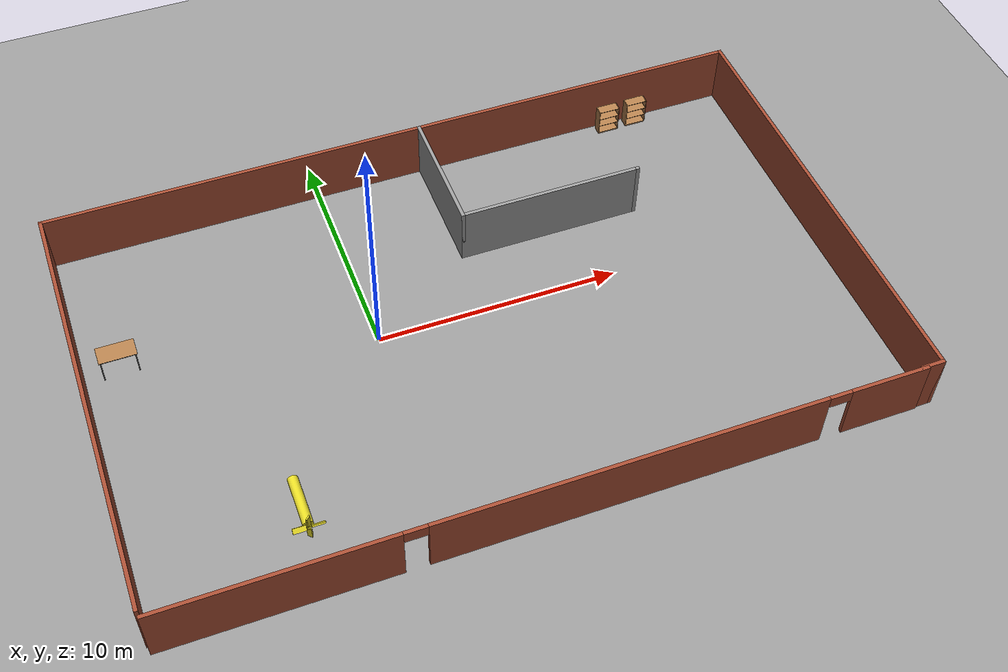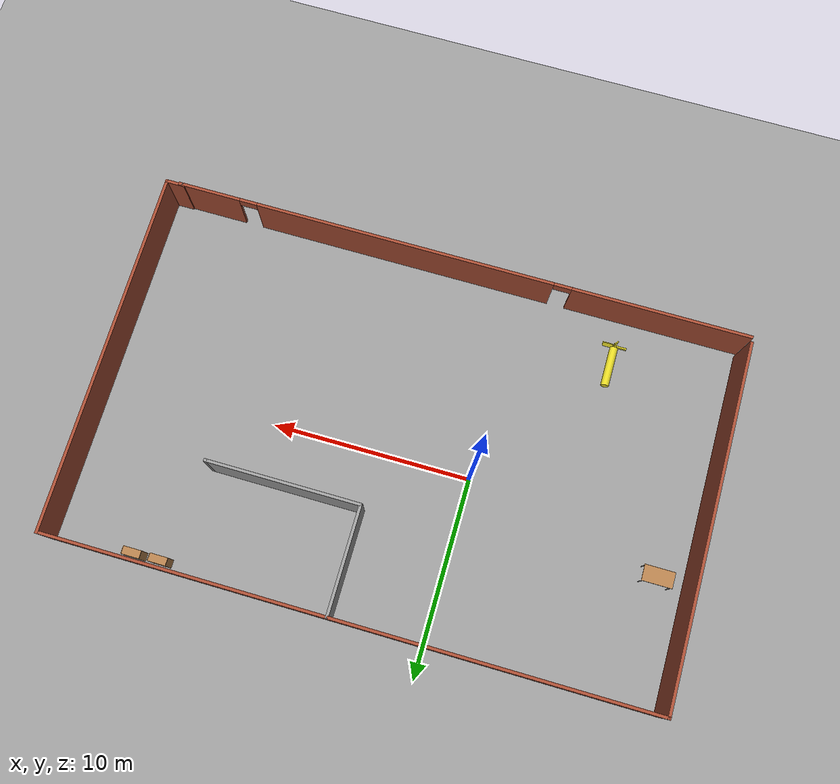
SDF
<sdf version="1.7">
 <world name="default">
  <light name="sun" type="directional">
   <pose>0 0 10 0 -0 0</pose>
   <diffuse>0.8 0.8 0.8 1</diffuse>
   <specular>0.2 0.2 0.2 1</specular>
   <attenuation>
    <range>1000</range>
    <constant>0.9</constant>
    <linear>0.01</linear>
    <quadratic>0.001</quadratic>
   </attenuation>
   <direction>-0.5 0.1 -0.9</direction>
   <spot><inner_angle>0</inner_angle><outer_angle>0</outer_angle><falloff>0</falloff></spot>
  </light>
  <gravity>0 0 -9.8</gravity>
  <magnetic_field>6e-06 2.3e-05 -4.2e-05</magnetic_field>
  <atmosphere type="adiabatic"/>
  <physics type="ode">
   <max_step_size>0.001</max_step_size>
   <real_time_factor>1</real_time_factor>
   <real_time_update_rate>1000</real_time_update_rate>
  </physics>
  <scene><ambient>0.4 0.4 0.4 1</ambient><background>0.7 0.7 0.7 1</background><shadows>1</shadows></scene>
  <audio><device>default</device></audio>
  <spherical_coordinates>
   <surface_model>EARTH_WGS84</surface_model>
   <latitude_deg>0</latitude_deg>
   <longitude_deg>0</longitude_deg>
   <elevation>0</elevation>
   <heading_deg>0</heading_deg>
  </spherical_coordinates>
  <model name="ugv_test_world">
   <pose>3.63834 -0.862389 0 0 -0 0</pose>
   <link name="Wall_10">
    <collision name="Wall_10_Collision">
     <geometry><box><size>18.5 0.15 2.5</size></box></geometry>
     <pose>0 0 1.25 0 -0 0</pose>
    </collision>
    <visual name="Wall_10_Visual">
     <pose>0 0 1.25 0 -0 0</pose>
     <geometry><box><size>18.5 0.15 2.5</size></box></geometry>
     <material>
      <script><uri>file://media/materials/scripts/gazebo.material</uri><name>Gazebo/Bricks</name></script>
      <ambient>1 1 1 1</ambient>
     </material>
     <meta><layer>0</layer></meta>
    </visual>
    <pose>14.925 0.024458 0 0 -0 -1.5708</pose>
   </link>
   <link name="Wall_11">
    <collision name="Wall_11_Collision">
     <geometry><box><size>1 0.15 2.5</size></box></geometry>
     <pose>0 0 1.25 0 -0 0</pose>
    </collision>
    <visual name="Wall_11_Visual">
     <pose>0 0 1.25 0 -0 0</pose>
     <geometry><box><size>1 0.15 2.5</size></box></geometry>
     <material>
      <script><uri>file://media/materials/scripts/gazebo.material</uri><name>Gazebo/Bricks</name></script>
      <ambient>1 1 1 1</ambient>
     </material>
     <meta><layer>0</layer></meta>
    </visual>
    <pose>14.5 -9.15054 0 0 -0 3.14159</pose>
   </link>
   <link name="Wall_12">
    <collision name="Wall_12_Collision">
     <geometry><box><size>0.15 0.15 2.5</size></box></geometry>
     <pose>0 0 1.25 0 -0 0</pose>
    </collision>
    <visual name="Wall_12_Visual">
     <pose>0 0 1.25 0 -0 0</pose>
     <geometry><box><size>0.15 0.15 2.5</size></box></geometry>
     <material>
      <script><uri>file://media/materials/scripts/gazebo.material</uri><name>Gazebo/Grey</name></script>
      <ambient>1 1 1 1</ambient>
     </material>
     <meta><layer>0</layer></meta>
    </visual>
    <pose>14.075 -9.15054 0 0 -0 0</pose>
   </link>
   <link name="Wall_18">
    <collision name="Wall_18_Collision">
     <geometry><box><size>5.5 0.15 2.5</size></box></geometry>
     <pose>0 0 1.25 0 -0 0</pose>
    </collision>
    <visual name="Wall_18_Visual">
     <pose>0 0 1.25 0 -0 0</pose>
     <geometry><box><size>5.5 0.15 2.5</size></box></geometry>
     <material>
      <script><uri>file://media/materials/scripts/gazebo.material</uri><name>Gazebo/Grey</name></script>
      <ambient>1 1 1 1</ambient>
     </material>
     <meta><layer>0</layer></meta>
    </visual>
    <pose>0.928395 6.51559 0 0 -0 -1.5708</pose>
   </link>
   <link name="Wall_19">
    <collision name="Wall_19_Collision">
     <geometry><box><size>7.75 0.15 2.5</size></box></geometry>
     <pose>0 0 1.25 0 -0 0</pose>
    </collision>
    <visual name="Wall_19_Visual">
     <pose>0 0 1.25 0 -0 0</pose>
     <geometry><box><size>7.75 0.15 2.5</size></box></geometry>
     <material>
      <script><uri>file://media/materials/scripts/gazebo.material</uri><name>Gazebo/Grey</name></script>
      <ambient>1 1 1 1</ambient>
     </material>
     <meta><layer>0</layer></meta>
    </visual>
    <pose>4.72839 3.84059 0 0 -0 0</pose>
   </link>
   <link name="Wall_20">
    <collision name="Wall_20_Collision">
     <geometry><box><size>0.16 0.15 2.5</size></box></geometry>
     <pose>0 0 1.25 0 -0 0</pose>
    </collision>
    <visual name="Wall_20_Visual">
     <pose>0 0 1.25 0 -0 0</pose>
     <geometry><box><size>0.16 0.15 2.5</size></box></geometry>
     <material>
      <script><uri>file://media/materials/scripts/gazebo.material</uri><name>Gazebo/Grey</name></script>
      <ambient>1 1 1 1</ambient>
     </material>
     <meta><layer>0</layer></meta>
    </visual>
    <pose>8.5334 3.84059 0 0 -0 0</pose>
   </link>
   <link name="Wall_5">
    <pose>-0.305064 -9.19946 0 0 -0 0</pose>
    <visual name="Wall_5_Visual_0">
     <pose>-10.1309 0 1.25 0 -0 0</pose>
     <geometry><box><size>8.98819 0.15 2.5</size></box></geometry>
     <material>
      <script><uri>file://media/materials/scripts/gazebo.material</uri><name>Gazebo/Bricks</name></script>
      <ambient>1 1 1 1</ambient>
     </material>
     <meta><layer>0</layer></meta>
    </visual>
    <collision name="Wall_5_Collision_0">
     <geometry><box><size>8.98819 0.15 2.5</size></box></geometry>
     <pose>-10.1309 0 1.25 0 -0 0</pose>
    </collision>
    <visual name="Wall_5_Visual_1">
     <pose>2.89206 0 1.25 0 -0 0</pose>
     <geometry><box><size>15.2577 0.15 2.5</size></box></geometry>
     <material>
      <script><uri>file://media/materials/scripts/gazebo.material</uri><name>Gazebo/Bricks</name></script>
      <ambient>1 1 1 1</ambient>
     </material>
     <meta><layer>0</layer></meta>
    </visual>
    <collision name="Wall_5_Collision_1">
     <geometry><box><size>15.2577 0.15 2.5</size></box></geometry>
     <pose>2.89206 0 1.25 0 -0 0</pose>
    </collision>
    <visual name="Wall_5_Visual_2">
     <pose>13.023 0 1.25 0 -0 0</pose>
     <geometry><box><size>3.20409 0.15 2.5</size></box></geometry>
     <material>
      <script><uri>file://media/materials/scripts/gazebo.material</uri><name>Gazebo/Bricks</name></script>
      <ambient>1 1 1 1</ambient>
     </material>
     <meta><layer>0</layer></meta>
    </visual>
    <collision name="Wall_5_Collision_2">
     <geometry><box><size>3.20409 0.15 2.5</size></box></geometry>
     <pose>13.023 0 1.25 0 -0 0</pose>
    </collision>
    <visual name="Wall_5_Visual_3">
     <pose>-5.18681 0 2.25 0 -0 0</pose>
     <geometry><box><size>0.9 0.15 0.5</size></box></geometry>
     <material>
      <script><uri>file://media/materials/scripts/gazebo.material</uri><name>Gazebo/Bricks</name></script>
      <ambient>1 1 1 1</ambient>
     </material>
     <meta><layer>0</layer></meta>
    </visual>
    <collision name="Wall_5_Collision_3">
     <geometry><box><size>0.9 0.15 0.5</size></box></geometry>
     <pose>-5.18681 0 2.25 0 -0 0</pose>
    </collision>
    <visual name="Wall_5_Visual_4">
     <pose>10.9709 0 2.25 0 -0 0</pose>
     <geometry><box><size>0.9 0.15 0.5</size></box></geometry>
     <material>
      <script><uri>file://media/materials/scripts/gazebo.material</uri><name>Gazebo/Bricks</name></script>
      <ambient>1 1 1 1</ambient>
     </material>
     <meta><layer>0</layer></meta>
    </visual>
    <collision name="Wall_5_Collision_4">
     <geometry><box><size>0.9 0.15 0.5</size></box></geometry>
     <pose>10.9709 0 2.25 0 -0 0</pose>
    </collision>
   </link>
   <link name="Wall_8">
    <collision name="Wall_8_Collision">
     <geometry><box><size>18.25 0.15 2.5</size></box></geometry>
     <pose>0 0 1.25 0 -0 0</pose>
    </collision>
    <visual name="Wall_8_Visual">
     <pose>0 0 1.25 0 -0 0</pose>
     <geometry><box><size>18.25 0.15 2.5</size></box></geometry>
     <material>
      <script><uri>file://media/materials/scripts/gazebo.material</uri><name>Gazebo/Bricks</name></script>
      <ambient>1 1 1 1</ambient>
     </material>
     <meta><layer>0</layer></meta>
    </visual>
    <pose>-14.925 0.149458 0 0 -0 1.5708</pose>
   </link>
   <link name="Wall_9">
    <collision name="Wall_9_Collision">
     <geometry><box><size>30 0.15 2.5</size></box></geometry>
     <pose>0 0 1.25 0 -0 0</pose>
    </collision>
    <visual name="Wall_9_Visual">
     <pose>0 0 1.25 0 -0 0</pose>
     <geometry><box><size>30 0.15 2.5</size></box></geometry>
     <material>
      <script><uri>file://media/materials/scripts/gazebo.material</uri><name>Gazebo/Bricks</name></script>
      <ambient>1 1 1 1</ambient>
     </material>
     <meta><layer>0</layer></meta>
    </visual>
    <pose>1e-06 9.19946 0 0 -0 0</pose>
   </link>
   <static>1</static>
  </model>
  <model name="ground_plane_0">
   <static>1</static>
   <link name="link">
    <collision name="collision">
     <geometry><plane><normal>0 0 1</normal><size>100 100</size></plane></geometry>
     <surface><friction><ode><mu>100</mu><mu2>50</mu2></ode></friction></surface>
    </collision>
    <visual name="visual">
     <cast_shadows>0</cast_shadows>
     <geometry><plane><normal>0 0 1</normal><size>100 100</size></plane></geometry>
     <material>
      <script><uri>file://media/materials/scripts/gazebo.material</uri><name>Gazebo/Grey</name></script>
     </material>
    </visual>
   </link>
   <pose>2.02952 -2.64177 0 0 -0 0</pose>
  </model>
  <model name="bookshelf">
   <static>1</static>
   <link name="link">
    <inertial><mass>1</mass></inertial>
    <collision name="back">
     <pose>0 0.005 0.6 0 -0 0</pose>
     <geometry><box><size>0.9 0.01 1.2</size></box></geometry>
    </collision>
    <visual name="visual1">
     <pose>0 0.005 0.6 0 -0 0</pose>
     <geometry><box><size>0.9 0.01 1.2</size></box></geometry>
     <material>
      <script><uri>file://media/materials/scripts/gazebo.material</uri><name>Gazebo/Wood</name></script>
     </material>
    </visual>
    <collision name="left_side">
     <pose>0.45 -0.195 0.6 0 -0 0</pose>
     <geometry><box><size>0.02 0.4 1.2</size></box></geometry>
    </collision>
    <visual name="visual2">
     <pose>0.45 -0.195 0.6 0 -0 0</pose>
     <geometry><box><size>0.02 0.4 1.2</size></box></geometry>
     <material>
      <script><uri>file://media/materials/scripts/gazebo.material</uri><name>Gazebo/Wood</name></script>
     </material>
    </visual>
    <collision name="right_side">
     <pose>-0.45 -0.195 0.6 0 -0 0</pose>
     <geometry><box><size>0.02 0.4 1.2</size></box></geometry>
    </collision>
    <visual name="visual3">
     <pose>-0.45 -0.195 0.6 0 -0 0</pose>
     <geometry><box><size>0.02 0.4 1.2</size></box></geometry>
     <material>
      <script><uri>file://media/materials/scripts/gazebo.material</uri><name>Gazebo/Wood</name></script>
     </material>
    </visual>
    <collision name="bottom">
     <pose>0 -0.195 0.03 0 -0 0</pose>
     <geometry><box><size>0.88 0.4 0.06</size></box></geometry>
    </collision>
    <visual name="visual4">
     <pose>0 -0.195 0.03 0 -0 0</pose>
     <geometry><box><size>0.88 0.4 0.06</size></box></geometry>
     <material>
      <script><uri>file://media/materials/scripts/gazebo.material</uri><name>Gazebo/Wood</name></script>
     </material>
    </visual>
    <collision name="top">
     <pose>0 -0.195 1.19 0 -0 0</pose>
     <geometry><box><size>0.88 0.4 0.02</size></box></geometry>
    </collision>
    <visual name="visual5">
     <pose>0 -0.195 1.19 0 -0 0</pose>
     <geometry><box><size>0.88 0.4 0.02</size></box></geometry>
     <material>
      <script><uri>file://media/materials/scripts/gazebo.material</uri><name>Gazebo/Wood</name></script>
     </material>
    </visual>
    <collision name="low_shelf">
     <pose>0 -0.195 0.43 0 -0 0</pose>
     <geometry><box><size>0.88 0.4 0.02</size></box></geometry>
    </collision>
    <visual name="visual6">
     <pose>0 -0.195 0.43 0 -0 0</pose>
     <geometry><box><size>0.88 0.4 0.02</size></box></geometry>
     <material>
      <script><uri>file://media/materials/scripts/gazebo.material</uri><name>Gazebo/Wood</name></script>
     </material>
    </visual>
    <collision name="high_shelf">
     <pose>0 -0.195 0.8 0 -0 0</pose>
     <geometry><box><size>0.88 0.4 0.02</size></box></geometry>
    </collision>
    <visual name="visual7">
     <pose>0 -0.195 0.8 0 -0 0</pose>
     <geometry><box><size>0.88 0.4 0.02</size></box></geometry>
     <material>
      <script><uri>file://media/materials/scripts/gazebo.material</uri><name>Gazebo/Wood</name></script>
     </material>
    </visual>
   </link>
   <pose>13.1306 8.14494 0 0 -0 0</pose>
  </model>
  <model name="bookshelf_0">
   <static>1</static>
   <link name="link">
    <inertial><mass>1</mass></inertial>
    <collision name="back">
     <pose>0 0.005 0.6 0 -0 0</pose>
     <geometry><box><size>0.9 0.01 1.2</size></box></geometry>
    </collision>
    <visual name="visual1">
     <pose>0 0.005 0.6 0 -0 0</pose>
     <geometry><box><size>0.9 0.01 1.2</size></box></geometry>
     <material>
      <script><uri>file://media/materials/scripts/gazebo.material</uri><name>Gazebo/Wood</name></script>
     </material>
    </visual>
    <collision name="left_side">
     <pose>0.45 -0.195 0.6 0 -0 0</pose>
     <geometry><box><size>0.02 0.4 1.2</size></box></geometry>
    </collision>
    <visual name="visual2">
     <pose>0.45 -0.195 0.6 0 -0 0</pose>
     <geometry><box><size>0.02 0.4 1.2</size></box></geometry>
     <material>
      <script><uri>file://media/materials/scripts/gazebo.material</uri><name>Gazebo/Wood</name></script>
     </material>
    </visual>
    <collision name="right_side">
     <pose>-0.45 -0.195 0.6 0 -0 0</pose>
     <geometry><box><size>0.02 0.4 1.2</size></box></geometry>
    </collision>
    <visual name="visual3">
     <pose>-0.45 -0.195 0.6 0 -0 0</pose>
     <geometry><box><size>0.02 0.4 1.2</size></box></geometry>
     <material>
      <script><uri>file://media/materials/scripts/gazebo.material</uri><name>Gazebo/Wood</name></script>
     </material>
    </visual>
    <collision name="bottom">
     <pose>0 -0.195 0.03 0 -0 0</pose>
     <geometry><box><size>0.88 0.4 0.06</size></box></geometry>
    </collision>
    <visual name="visual4">
     <pose>0 -0.195 0.03 0 -0 0</pose>
     <geometry><box><size>0.88 0.4 0.06</size></box></geometry>
     <material>
      <script><uri>file://media/materials/scripts/gazebo.material</uri><name>Gazebo/Wood</name></script>
     </material>
    </visual>
    <collision name="top">
     <pose>0 -0.195 1.19 0 -0 0</pose>
     <geometry><box><size>0.88 0.4 0.02</size></box></geometry>
    </collision>
    <visual name="visual5">
     <pose>0 -0.195 1.19 0 -0 0</pose>
     <geometry><box><size>0.88 0.4 0.02</size></box></geometry>
     <material>
      <script><uri>file://media/materials/scripts/gazebo.material</uri><name>Gazebo/Wood</name></script>
     </material>
    </visual>
    <collision name="low_shelf">
     <pose>0 -0.195 0.43 0 -0 0</pose>
     <geometry><box><size>0.88 0.4 0.02</size></box></geometry>
    </collision>
    <visual name="visual6">
     <pose>0 -0.195 0.43 0 -0 0</pose>
     <geometry><box><size>0.88 0.4 0.02</size></box></geometry>
     <material>
      <script><uri>file://media/materials/scripts/gazebo.material</uri><name>Gazebo/Wood</name></script>
     </material>
    </visual>
    <collision name="high_shelf">
     <pose>0 -0.195 0.8 0 -0 0</pose>
     <geometry><box><size>0.88 0.4 0.02</size></box></geometry>
    </collision>
    <visual name="visual7">
     <pose>0 -0.195 0.8 0 -0 0</pose>
     <geometry><box><size>0.88 0.4 0.02</size></box></geometry>
     <material>
      <script><uri>file://media/materials/scripts/gazebo.material</uri><name>Gazebo/Wood</name></script>
     </material>
    </visual>
   </link>
   <pose>14.4366 8.17413 0 0 -0 0</pose>
  </model>
  <model name="table">
   <static>1</static>
   <link name="link">
    <collision name="surface">
     <pose>0 0 1 0 -0 0</pose>
     <geometry><box><size>1.5 0.8 0.03</size></box></geometry>
     <surface><friction><ode><mu>0.6</mu><mu2>0.6</mu2></ode></friction></surface>
    </collision>
    <visual name="visual1">
     <pose>0 0 1 0 -0 0</pose>
     <geometry><box><size>1.5 0.8 0.03</size></box></geometry>
     <material>
      <script><uri>file://media/materials/scripts/gazebo.material</uri><name>Gazebo/Wood</name></script>
     </material>
    </visual>
    <collision name="front_left_leg">
     <pose>0.68 0.38 0.5 0 -0 0</pose>
     <geometry><cylinder><radius>0.02</radius><length>1</length></cylinder></geometry>
    </collision>
    <visual name="front_left_leg">
     <pose>0.68 0.38 0.5 0 -0 0</pose>
     <geometry><cylinder><radius>0.02</radius><length>1</length></cylinder></geometry>
     <material>
      <script><uri>file://media/materials/scripts/gazebo.material</uri><name>Gazebo/Grey</name></script>
     </material>
    </visual>
    <collision name="front_right_leg">
     <pose>0.68 -0.38 0.5 0 -0 0</pose>
     <geometry><cylinder><radius>0.02</radius><length>1</length></cylinder></geometry>
    </collision>
    <visual name="front_right_leg">
     <pose>0.68 -0.38 0.5 0 -0 0</pose>
     <geometry><cylinder><radius>0.02</radius><length>1</length></cylinder></geometry>
     <material>
      <script><uri>file://media/materials/scripts/gazebo.material</uri><name>Gazebo/Grey</name></script>
     </material>
    </visual>
    <collision name="back_right_leg">
     <pose>-0.68 -0.38 0.5 0 -0 0</pose>
     <geometry><cylinder><radius>0.02</radius><length>1</length></cylinder></geometry>
    </collision>
    <visual name="back_right_leg">
     <pose>-0.68 -0.38 0.5 0 -0 0</pose>
     <geometry><cylinder><radius>0.02</radius><length>1</length></cylinder></geometry>
     <material>
      <script><uri>file://media/materials/scripts/gazebo.material</uri><name>Gazebo/Grey</name></script>
     </material>
    </visual>
    <collision name="back_left_leg">
     <pose>-0.68 0.38 0.5 0 -0 0</pose>
     <geometry><cylinder><radius>0.02</radius><length>1</length></cylinder></geometry>
    </collision>
    <visual name="back_left_leg">
     <pose>-0.68 0.38 0.5 0 -0 0</pose>
     <geometry><cylinder><radius>0.02</radius><length>1</length></cylinder></geometry>
     <material>
      <script><uri>file://media/materials/scripts/gazebo.material</uri><name>Gazebo/Grey</name></script>
     </material>
    </visual>
   </link>
   <pose>-9.78764 2.15857 0 0 -0 0</pose>
  </model>
  <model name="ground_plane">
   <static>1</static>
   <link name="link">
    <collision name="collision">
     <geometry><plane><normal>0 0 1</normal><size>100 100</size></plane></geometry>
     <surface><friction><ode><mu>100</mu><mu2>50</mu2></ode></friction></surface>
    </collision>
    <visual name="visual">
     <cast_shadows>0</cast_shadows>
     <geometry><plane><normal>0 0 1</normal><size>100 100</size></plane></geometry>
     <material>
      <script><uri>file://media/materials/scripts/gazebo.material</uri><name>Gazebo/Grey</name></script>
     </material>
    </visual>
   </link>
  </model>
  <model name="submarine">
   <pose>-5.08795 -7.04069 1.51 1.57291 -0 0</pose>
   <link name="body">
    <inertial>
     <mass>251.327</mass>
     <inertia><ixx>86.2891</ixx><ixy>0</ixy><ixz>0</ixz><iyy>86.2891</iyy><iyz>0</iyz><izz>5.02655</izz></inertia>
    </inertial>
    <visual name="body_visual">
     <geometry><cylinder><radius>0.2</radius><length>2</length></cylinder></geometry>
     <material>
      <script><uri>file://media/materials/scripts/gazebo.material</uri><name>Gazebo/Yellow</name></script>
     </material>
    </visual>
    <collision name="body_collision">
     <geometry><cylinder><radius>0.2</radius><length>2</length></cylinder></geometry>
    </collision>
    <visual name="spacer_visual">
     <pose>0 0 1.05855 0 -0 0</pose>
     <geometry><cylinder><radius>0.0933402</radius><length>0.127211</length></cylinder></geometry>
     <material>
      <script><uri>file://media/materials/scripts/gazebo.material</uri><name>Gazebo/Yellow</name></script>
     </material>
    </visual>
   </link>
   <link name="propeller">
    <pose>0 0 1.09 3.14159 -0 0</pose>
    <inertial>
     <mass>21.82</mass>
     <inertia>
      <ixx>0.459994</ixx>
      <ixy>0</ixy>
      <ixz>0</ixz>
      <iyy>0.459994</iyy>
      <iyz>0</iyz>
      <izz>0.909167</izz>
     </inertia>
    </inertial>
    <visual name="blade1_visual">
     <pose>0.34334 0 0 0.785398 -0 0</pose>
     <geometry><box><size>0.5 0.2 0.05455</size></box></geometry>
     <material>
      <script><uri>file://media/materials/scripts/gazebo.material</uri><name>Gazebo/Yellow</name></script>
     </material>
    </visual>
    <collision name="blade1_collision">
     <pose>0.34334 0 0 0.785398 -0 0</pose>
     <geometry><box><size>0.5 0.2 0.05455</size></box></geometry>
    </collision>
    <visual name="blade2_visual">
     <pose>0 0.34334 0 0.785398 0 1.5708</pose>
     <geometry><box><size>0.5 0.2 0.05455</size></box></geometry>
     <material>
      <script><uri>file://media/materials/scripts/gazebo.material</uri><name>Gazebo/Yellow</name></script>
     </material>
    </visual>
    <collision name="blade2_collision">
     <pose>0 0.34334 0 0.785398 0 1.5708</pose>
     <geometry><box><size>0.5 0.2 0.05455</size></box></geometry>
    </collision>
    <visual name="blade3_visual">
     <pose>-0.34334 -0 0 -0.785398 0 0</pose>
     <geometry><box><size>0.5 0.2 0.05455</size></box></geometry>
     <material>
      <script><uri>file://media/materials/scripts/gazebo.material</uri><name>Gazebo/Yellow</name></script>
     </material>
    </visual>
    <collision name="blade3_collision">
     <pose>-0.34334 -0 0 -0.785398 0 0</pose>
     <geometry><box><size>0.5 0.2 0.05455</size></box></geometry>
    </collision>
    <visual name="blade4_visual">
     <pose>-0 -0.34334 0 -0.785398 -0 1.5708</pose>
     <geometry><box><size>0.5 0.2 0.05455</size></box></geometry>
     <material>
      <script><uri>file://media/materials/scripts/gazebo.material</uri><name>Gazebo/Yellow</name></script>
     </material>
    </visual>
    <collision name="blade4_collision">
     <pose>-0 -0.34334 0 -0.785398 -0 1.5708</pose>
     <geometry><box><size>0.5 0.2 0.05455</size></box></geometry>
    </collision>
   </link>
   <joint name="spinning_joint" type="revolute">
    <parent>body</parent>
    <child>propeller</child>
    <axis>
     <xyz expressed_in="__model__">0 0 1</xyz>
     <limit><lower>-1e+12</lower><upper>1e+12</upper><effort>-1</effort><velocity>-1</velocity></limit>
     <dynamics><spring_reference>0</spring_reference><spring_stiffness>0</spring_stiffness></dynamics>
    </axis>
   </joint>
   <plugin name="submarine_propeller_1" filename="libLiftDragPlugin.so">
    <air_density>1000</air_density>
    <cla>1.2535816618911175</cla>
    <cla_stall>-1.4326647564469914</cla_stall>
    <cda>0</cda>
    <cda_stall>1.4326647564469914</cda_stall>
    <alpha_stall>1.396</alpha_stall>
    <a0>0</a0>
    <area>0.27637</area>
    <upward>0 -0.7071067811865476 -0.7071067811865475</upward>
    <forward>0 -0.7071067811865475 0.7071067811865476</forward>
    <link_name>propeller</link_name>
    <cp>0.35 0 0</cp>
   </plugin>
   <plugin name="submarine_propeller_2" filename="libLiftDragPlugin.so">
    <air_density>1000</air_density>
    <cla>1.2535816618911175</cla>
    <cla_stall>-1.4326647564469914</cla_stall>
    <cda>0</cda>
    <cda_stall>1.4326647564469914</cda_stall>
    <alpha_stall>1.396</alpha_stall>
    <a0>0</a0>
    <area>0.27637</area>
    <upward>-0.7071067811865475 0 -0.7071067811865476</upward>
    <forward>-0.7071067811865476 0 0.7071067811865475</forward>
    <link_name>propeller</link_name>
    <cp>0 -0.35 0</cp>
   </plugin>
   <plugin name="submarine_propeller_3" filename="libLiftDragPlugin.so">
    <air_density>1000</air_density>
    <cla>1.2535816618911175</cla>
    <cla_stall>-1.4326647564469914</cla_stall>
    <cda>0</cda>
    <cda_stall>1.4326647564469914</cda_stall>
    <alpha_stall>1.396</alpha_stall>
    <a0>0</a0>
    <area>0.27637</area>
    <upward>0 0.7071067811865475 -0.7071067811865476</upward>
    <forward>0 -0.7071067811865476 -0.7071067811865475</forward>
    <link_name>propeller</link_name>
    <cp>-0.35 0 0</cp>
   </plugin>
   <plugin name="submarine_propeller_4" filename="libLiftDragPlugin.so">
    <air_density>1000</air_density>
    <cla>1.2535816618911175</cla>
    <cla_stall>-1.4326647564469914</cla_stall>
    <cda>0</cda>
    <cda_stall>1.4326647564469914</cda_stall>
    <alpha_stall>1.396</alpha_stall>
    <a0>0</a0>
    <area>0.27637</area>
    <upward>0.7071067811865476 0 -0.7071067811865475</upward>
    <forward>0.7071067811865475 0 0.7071067811865476</forward>
    <link_name>propeller</link_name>
    <cp>0 0.35 0</cp>
   </plugin>
   <plugin name="buoyancy" filename="libBuoyancyPlugin.so"><fluid_density>1000</fluid_density></plugin>
  </model>
 </world>
</sdf>
